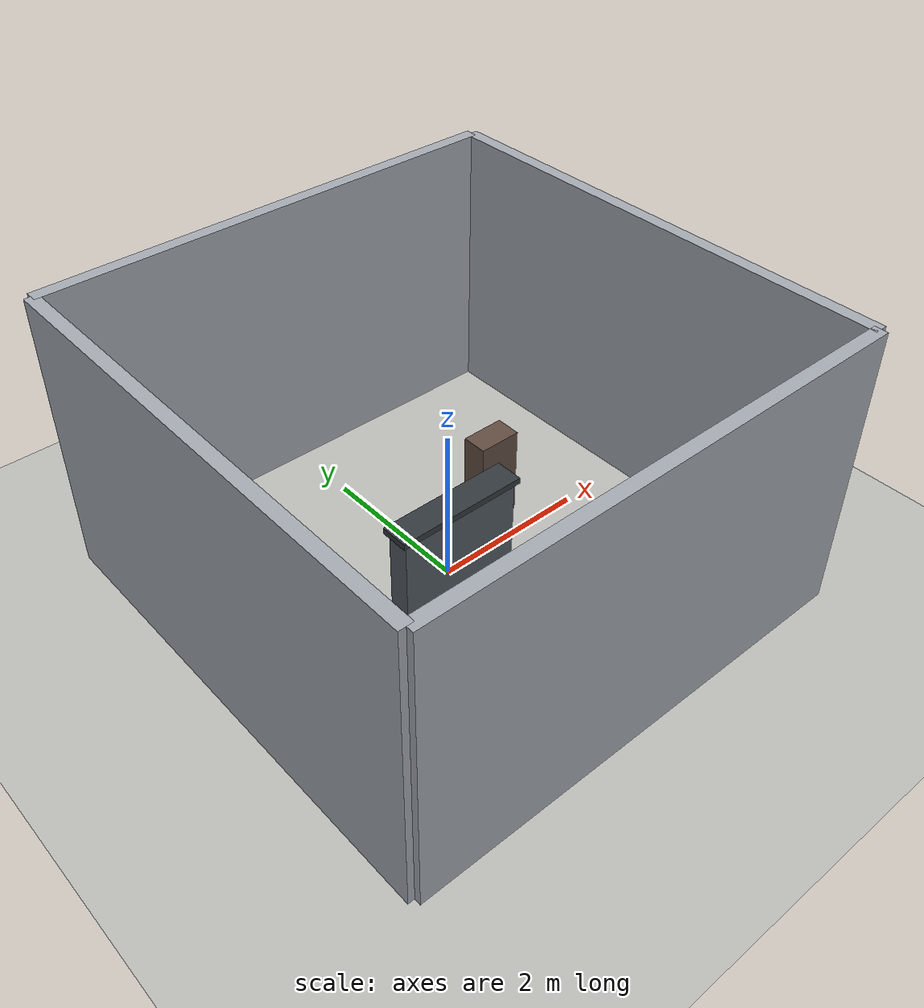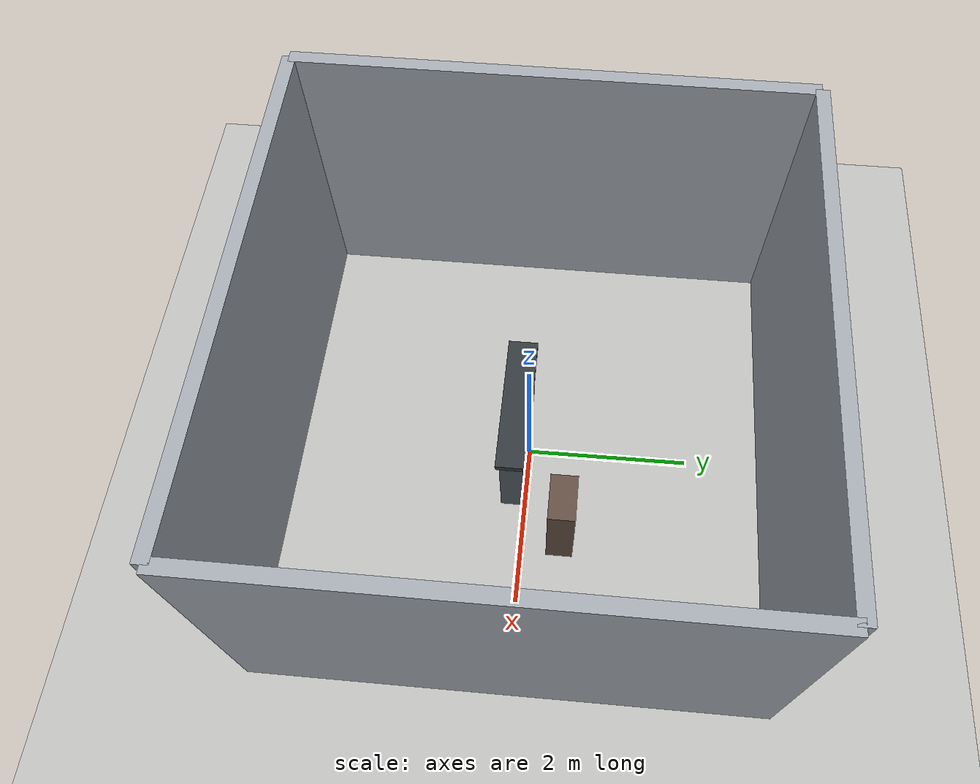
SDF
<?xml version="1.0" ?>
<sdf version="1.8">

  <world name="warehouse_occ_longshadow">

    <physics name="default_physics" type="ode">
      <max_step_size>0.001</max_step_size>
      <real_time_factor>1.0</real_time_factor>
      <real_time_update_rate>1000</real_time_update_rate>
    </physics>

    <plugin name="gz::sim::systems::Physics"
            filename="gz-sim-physics-system"/>
    <plugin name="gz::sim::systems::UserCommands"
            filename="gz-sim-user-commands-system"/>
    <plugin name="gz::sim::systems::SceneBroadcaster"
            filename="gz-sim-scene-broadcaster-system"/>
    <plugin name="gz::sim::systems::Contact"
            filename="gz-sim-contact-system"/>
    <plugin name="gz::sim::systems::Sensors"
            filename="gz-sim-sensors-system">
      <render_engine>ogre2</render_engine>
    </plugin>

    <gravity>0 0 -9.81</gravity>
    <magnetic_field>6e-06 2.3e-05 -4.2e-05</magnetic_field>
    <atmosphere type="adiabatic"/>

    <scene>
      <ambient>0.50 0.50 0.50 1</ambient>
      <background>0.72 0.72 0.72 1</background>
      <shadows>false</shadows>
    </scene>

    <model name="ground_plane">
      <static>true</static>
      <link name="link">
        <collision name="collision">
          <geometry>
            <plane>
              <normal>0 0 1</normal>
              <size>6 6</size>
            </plane>
          </geometry>
        </collision>
        <visual name="visual">
          <geometry>
            <plane>
              <normal>0 0 1</normal>
              <size>6 6</size>
            </plane>
          </geometry>
          <material>
            <ambient>0.73 0.73 0.72 1</ambient>
            <diffuse>0.73 0.73 0.72 1</diffuse>
            <specular>0.08 0.08 0.08 1</specular>
          </material>
        </visual>
      </link>
    </model>

    <model name="warehouse_walls">
      <static>true</static>

      <link name="wall_x_pos">
        <pose>3 0 1.8 0 0 0</pose>
        <collision name="collision">
          <geometry>
            <box>
              <size>0.16 6 3.6</size>
            </box>
          </geometry>
        </collision>
        <visual name="visual">
          <geometry>
            <box>
              <size>0.16 6 3.6</size>
            </box>
          </geometry>
          <material>
            <ambient>0.64 0.66 0.69 1.0</ambient>
            <diffuse>0.64 0.66 0.69 1.0</diffuse>
            <specular>0.04 0.04 0.04 1.0</specular>
          </material>
        </visual>
      </link>

      <link name="wall_x_neg">
        <pose>-3 0 1.8 0 0 0</pose>
        <collision name="collision">
          <geometry>
            <box>
              <size>0.16 6 3.6</size>
            </box>
          </geometry>
        </collision>
        <visual name="visual">
          <geometry>
            <box>
              <size>0.16 6 3.6</size>
            </box>
          </geometry>
          <material>
            <ambient>0.64 0.66 0.69 1.0</ambient>
            <diffuse>0.64 0.66 0.69 1.0</diffuse>
            <specular>0.04 0.04 0.04 1.0</specular>
          </material>
        </visual>
      </link>

      <link name="wall_y_pos">
        <pose>0 3 1.8 0 0 0</pose>
        <collision name="collision">
          <geometry>
            <box>
              <size>6 0.16 3.6</size>
            </box>
          </geometry>
        </collision>
        <visual name="visual">
          <geometry>
            <box>
              <size>6 0.16 3.6</size>
            </box>
          </geometry>
          <material>
            <ambient>0.64 0.66 0.69 1.0</ambient>
            <diffuse>0.64 0.66 0.69 1.0</diffuse>
            <specular>0.04 0.04 0.04 1.0</specular>
          </material>
        </visual>
      </link>

      <link name="wall_y_neg">
        <pose>0 -3 1.8 0 0 0</pose>
        <collision name="collision">
          <geometry>
            <box>
              <size>6 0.16 3.6</size>
            </box>
          </geometry>
        </collision>
        <visual name="visual">
          <geometry>
            <box>
              <size>6 0.16 3.6</size>
            </box>
          </geometry>
          <material>
            <ambient>0.64 0.66 0.69 1.0</ambient>
            <diffuse>0.64 0.66 0.69 1.0</diffuse>
            <specular>0.04 0.04 0.04 1.0</specular>
          </material>
        </visual>
      </link>
    </model>

    <!-- Thin shelf used for occlusion, planning, and physical collision checks. -->
    <model name="warehouse_rack_occluders">
      <static>true</static>
      <link name="shelf_body">
        <pose>-0.05 -0.15 0.60 0 0 0</pose>
        <collision name="collision">
          <geometry>
            <box>
              <size>1.60 0.28 1.20</size>
            </box>
          </geometry>
        </collision>
        <visual name="visual">
          <geometry>
            <box>
              <size>1.60 0.28 1.20</size>
            </box>
          </geometry>
          <material>
            <ambient>0.32 0.35 0.38 1.0</ambient>
            <diffuse>0.32 0.35 0.38 1.0</diffuse>
            <specular>0.03 0.03 0.03 1.0</specular>
          </material>
        </visual>
      </link>

      <link name="shelf_top">
        <pose>-0.05 -0.15 1.18 0 0 0</pose>
        <collision name="collision">
          <geometry>
            <box>
              <size>1.70 0.36 0.08</size>
            </box>
          </geometry>
        </collision>
        <visual name="visual">
          <geometry>
            <box>
              <size>1.70 0.36 0.08</size>
            </box>
          </geometry>
          <material>
            <ambient>0.20 0.22 0.24 1.0</ambient>
            <diffuse>0.20 0.22 0.24 1.0</diffuse>
            <specular>0.02 0.02 0.02 1.0</specular>
          </material>
        </visual>
      </link>
    </model>

    <!-- Upper-route shadow extender / pinch obstacle.
         Purpose: keep the short northern crossover in reduced visibility for
         longer, while leaving the lower visible detour open. -->
    <model name="warehouse_shadow_extender">
      <static>true</static>
      <link name="upper_block">
        <pose>1.10 0.48 0.60 0 0 0</pose>
        <collision name="collision">
          <geometry>
            <box>
              <size>0.55 0.32 1.20</size>
            </box>
          </geometry>
        </collision>
        <visual name="visual">
          <geometry>
            <box>
              <size>0.55 0.32 1.20</size>
            </box>
          </geometry>
          <material>
            <ambient>0.38 0.30 0.26 1.0</ambient>
            <diffuse>0.38 0.30 0.26 1.0</diffuse>
            <specular>0.03 0.03 0.03 1.0</specular>
          </material>
        </visual>
      </link>
    </model>

    <include>
      <uri>model://external_camera</uri>
      <pose>-2.45 -2.45 2.80 0 0.85 0.7854</pose>
    </include>

    <light name="sun" type="directional">
      <pose>0 0 10 0 0 0</pose>
      <cast_shadows>false</cast_shadows>
      <intensity>0.90</intensity>
      <direction>0 0 -1</direction>
    </light>

  </world>
</sdf>

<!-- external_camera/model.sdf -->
<sdf version="1.6">
  <model name="external_camera">
    <static>true</static>
    <pose>0 0 0 0 0 0</pose>
    <link name="link">
      <sensor name="camera" type="camera">
        <camera>
          <horizontal_fov>1.5708</horizontal_fov> <!-- 90 degrees -->
          <image>
            <width>1280</width>
            <height>720</height>
          </image>
          <clip>
            <near>0.1</near>
            <far>100</far>
          </clip>
        </camera>
        <always_on>1</always_on>
        <update_rate>5</update_rate>
        <visualize>false</visualize>
        <topic>external_camera/image_raw</topic>
      </sensor>
      <sensor name="depth_camera" type="depth_camera">
        <camera>
          <horizontal_fov>1.5708</horizontal_fov>
          <image><width>1280</width><height>720</height><format>R_FLOAT32</format></image>
          <clip><near>0.1</near><far>100</far></clip>
        </camera>
        <always_on>0</always_on>
        <update_rate>5</update_rate>
        <visualize>false</visualize>
        <topic>external_camera/depth</topic>
      </sensor>
      <sensor name="segmentation_camera" type="segmentation">
        <camera>
          <segmentation_type>semantic</segmentation_type>
          <horizontal_fov>1.5708</horizontal_fov>
          <image>
            <width>1280</width>
            <height>720</height>
          </image>
          <clip>
            <near>0.1</near>
            <far>100</far>
          </clip>
        </camera>
        <always_on>0</always_on>
        <update_rate>1</update_rate>
        <visualize>false</visualize>
        <topic>external_camera/segmentation</topic>
      </sensor>
    </link>
  </model>
</sdf>
